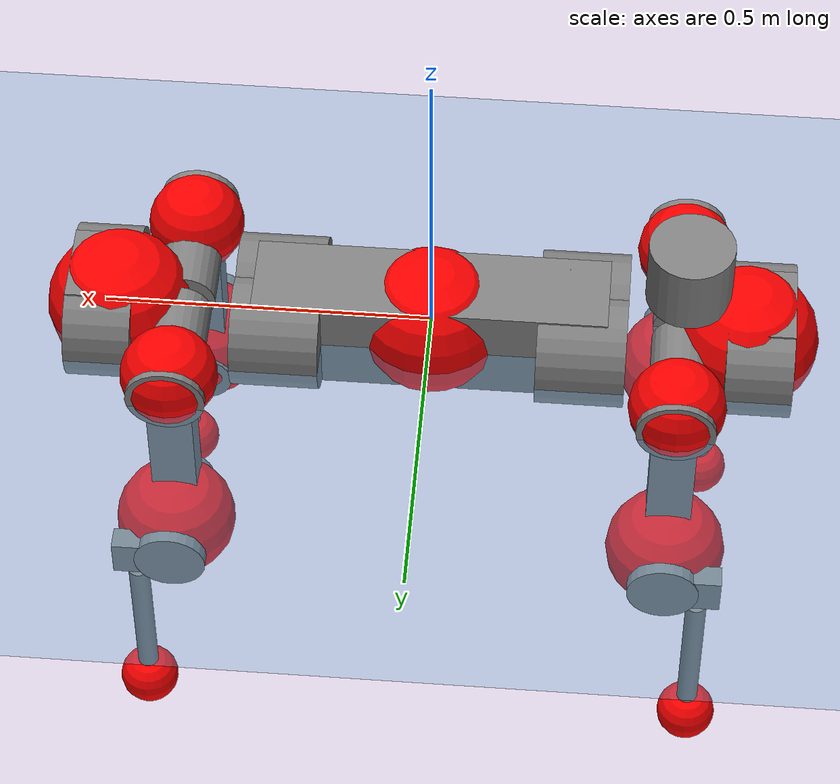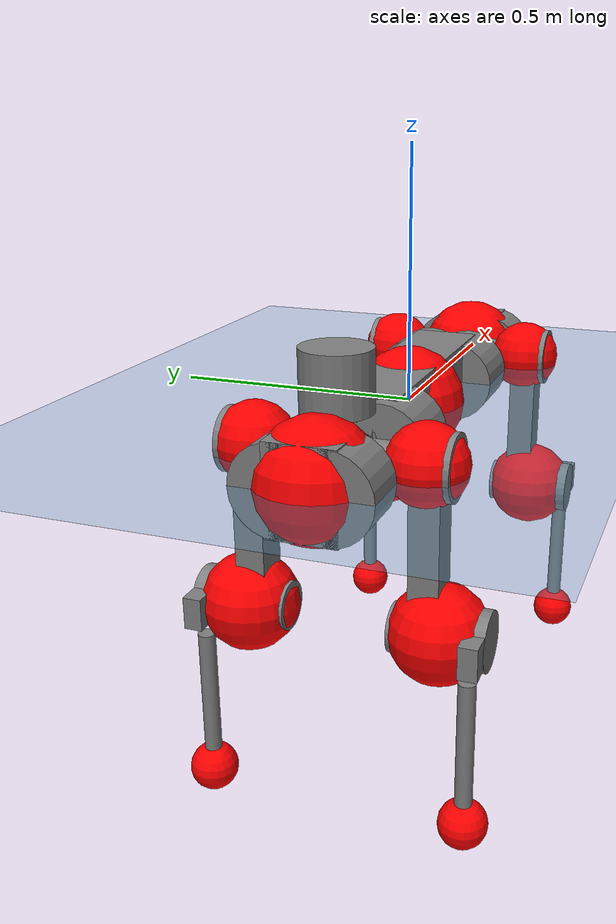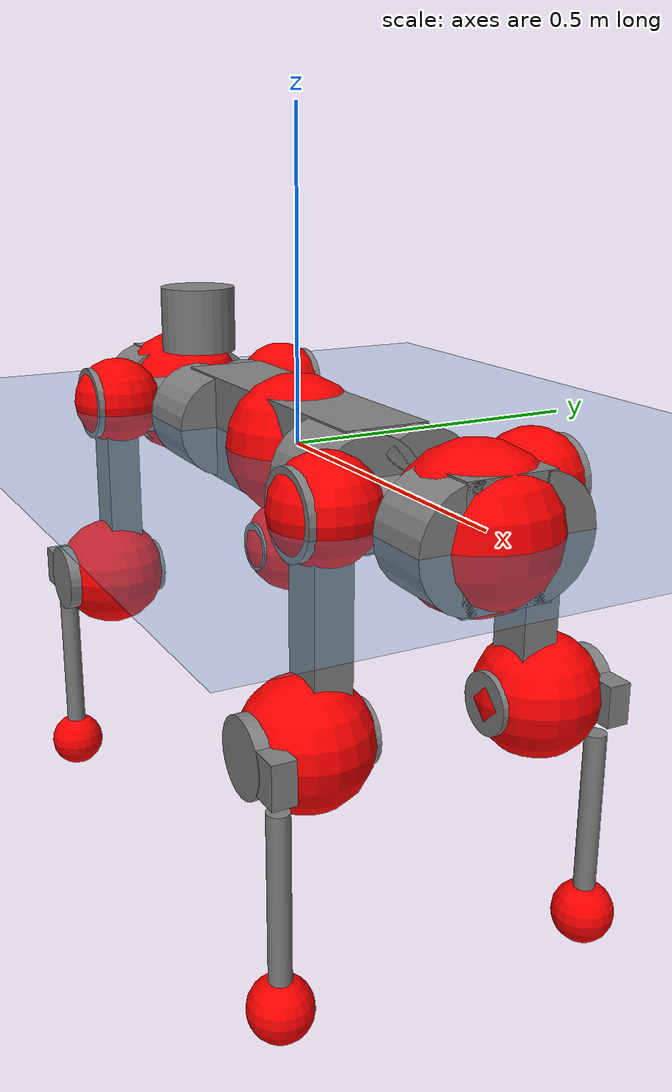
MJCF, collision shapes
<mujoco model="anymal_c">
  <compiler angle="radian" assetdir="assets" balanceinertia="true" inertiafromgeom="false"/>

  <option timestep="0.005" density="1.2" viscosity="2e-05"/>

  <size nkey="1"/>

  <visual>
    <quality shadowsize="8192"/>
    <map shadowclip="0.5"/>
  </visual>

  <default>
    <default class="/">
      <material specular="0" shininess="0.25"/>
      <geom contype="0" conaffinity="0" group="1" solref="-1000 -80"/>
      <site size="0.01 0.005 0.005" group="5"/>
      <general forcelimited="true" forcerange="-80 80" biastype="affine" gainprm="80" biasprm="0 -80 -2"/>
      <default class="anymal_c">
        <joint armature="0.01" damping="0.01" frictionloss="0.1"/>
        <default class="visual">
          <geom type="mesh" group="2"/>
          <default class="visual_zflip"/>
        </default>
        <default class="collision">
          <geom type="cylinder" group="3"/>
          <default class="foot">
            <geom size="0.03 0 0" type="sphere" condim="6" priority="1" friction="0.8 0.02 0.01" solimp="0.015 1 0.03"/>
          </default>
        </default>
      </default>
      <default class="reward_collision_sphere">
        <geom group="5" rgba="1 0 0 1"/>
      </default>
    </default>
  </default>

  <asset>
    <texture type="skybox" colorspace="auto" name="//unnamed_texture_0" builtin="gradient" rgb1="0.95 0.95 0.95" rgb2="0.95 0.95 0.95" width="100" height="600"/>
    <texture type="2d" colorspace="auto" name="texplane" builtin="checker" rgb1="0.345 0.575 0.748" rgb2="0.345 0.575 0.748" markrgb="1 1 1" width="512" height="512"/>
    <texture type="2d" colorspace="linear" name="base" file="base.png"/>
    <texture type="2d" colorspace="linear" name="top_shell" file="top_shell.png"/>
    <texture type="2d" colorspace="linear" name="bottom_shell" file="bottom_shell.png"/>
    <texture type="2d" colorspace="linear" name="remote" file="remote.png"/>
    <texture type="2d" colorspace="linear" name="hatch" file="hatch.png"/>
    <texture type="2d" colorspace="linear" name="handle" file="handle.png"/>
    <texture type="2d" colorspace="linear" name="face" file="face.png"/>
    <texture type="2d" colorspace="linear" name="battery" file="battery.png"/>
    <texture type="2d" colorspace="linear" name="lidar_cage" file="lidar_cage.png"/>
    <texture type="2d" colorspace="linear" name="depth_camera" file="depth_camera.png"/>
    <texture type="2d" colorspace="linear" name="wide_angle_camera" file="wide_angle_camera.png"/>
    <texture type="2d" colorspace="linear" name="lidar" file="lidar.png"/>
    <texture type="2d" colorspace="linear" name="drive" file="drive.png"/>
    <texture type="2d" colorspace="linear" name="hip_l" file="hip_l.png"/>
    <texture type="2d" colorspace="linear" name="shank_l" file="shank_l.png"/>
    <texture type="2d" colorspace="linear" name="foot" file="foot.png"/>
    <texture type="2d" colorspace="linear" name="thigh" file="thigh.png"/>
    <texture type="2d" colorspace="linear" name="shank_r" file="shank_r.png"/>
    <texture type="2d" colorspace="linear" name="hip_r" file="hip_r.png"/>
    <material name="MatPlane" class="/" texture="texplane" texuniform="true" texrepeat="2 2" specular="0.9" shininess="0.5"/>
    <material name="black_plastic" class="/" rgba="0.007 0.007 0.007 1"/>
    <material name="green" class="/" rgba="0.052 0.178 0.033 1"/>
    <material name="red" class="/" rgba="0.178 0.006 0.005 1"/>
    <material name="yellow" class="/" rgba="0.178 0.119 0.006 1"/>
    <material name="lwl" class="/" rgba="0.8 0.8 0.8 1"/>
    <material name="base" class="/" texture="base"/>
    <material name="top_shell" class="/" texture="top_shell"/>
    <material name="bottom_shell" class="/" texture="bottom_shell"/>
    <material name="hip_l" class="/" texture="hip_l"/>
    <material name="thigh" class="/" texture="thigh"/>
    <material name="shank_l" class="/" texture="shank_l"/>
    <material name="foot" class="/" texture="foot"/>
    <material name="hip_r" class="/" texture="hip_r"/>
    <material name="shank" class="/" texture="shank_r"/>
    <material name="hatch" class="/" texture="hatch"/>
    <material name="remote" class="/" texture="remote"/>
    <material name="handle" class="/" texture="handle"/>
    <material name="face" class="/" texture="face"/>
    <material name="depth_camera" class="/" texture="depth_camera"/>
    <material name="wide_angle_camera" class="/" texture="wide_angle_camera"/>
    <material name="battery" class="/" texture="battery"/>
    <material name="lidar_cage" class="/" texture="lidar_cage"/>
    <material name="lidar" class="/" texture="lidar"/>
    <material name="drive" class="/" texture="drive"/>
    <mesh name="base_0" class="/" file="base_0.obj"/>
    <mesh name="base_1" class="/" file="base_1.obj"/>
    <mesh name="base_2" class="/" file="base_2.obj"/>
    <mesh name="base_3" class="/" file="base_3.obj"/>
    <mesh name="base_4" class="/" file="base_4.obj"/>
    <mesh name="base_5" class="/" file="base_5.obj"/>
    <mesh name="top_shell" class="/" file="top_shell.obj"/>
    <mesh name="bottom_shell" class="/" file="bottom_shell.obj"/>
    <mesh name="remote" class="/" file="remote.obj"/>
    <mesh name="handle" class="/" file="handle.obj"/>
    <mesh name="face" class="/" file="face.obj"/>
    <mesh name="wide_angle_camera" class="/" file="wide_angle_camera.obj"/>
    <mesh name="depth_camera" class="/" file="depth_camera.obj"/>
    <mesh name="battery" class="/" file="battery.obj"/>
    <mesh name="lidar_cage" class="/" file="lidar_cage.obj"/>
    <mesh name="lidar" class="/" file="lidar.obj"/>
    <mesh name="drive" class="/" file="drive.obj"/>
    <mesh name="hip_l" class="/" file="hip_l.obj"/>
    <mesh name="thigh" class="/" file="thigh.obj"/>
    <mesh name="shank_l" class="/" file="shank_l.obj"/>
    <mesh name="foot" class="/" file="foot.obj"/>
    <mesh name="hip_r" class="/" file="hip_r.obj"/>
    <mesh name="hatch" class="/" file="hatch.obj"/>
    <mesh name="shank_r" class="/" file="shank_r.obj"/>
  </asset>

  <worldbody>
    <geom name="floor" class="/" size="100 100 0.125" type="plane" group="0" material="MatPlane"/>
    <light name="toplight_shadow" class="/" pos="0 0 5" dir="0.0990148 0.0990148 -0.990148" type="directional" ambient="0.04 0.04 0.04" diffuse="0.55 0.55 0.55" specular="0.12 0.12 0.12"/>
    <light name="toplight_fill" class="/" pos="0 0 5" dir="0.0990148 0.0990148 -0.990148" type="directional" castshadow="false" ambient="0.04 0.04 0.04" diffuse="0.3 0.3 0.3" specular="0.08 0.08 0.08"/>
    <body name="trunk" childclass="anymal_c" pos="-0.000695528 -0.000434746 -0.00246914" quat="1 3.29312e-05 -0.000153921 0.000123851">
      <inertial pos="0.000509699 -0.00128859 0.0562188" quat="0.493187 0.500247 0.499317 0.507151" mass="15.7063" diaginertia="0.914244 0.0593266 0.350719"/>
      <joint name="//unnamed_joint_0" type="free" armature="0" damping="0" frictionloss="0"/>
      <geom name="//unnamed_geom_1" class="visual" material="green" mesh="base_0"/>
      <geom name="//unnamed_geom_2" class="visual" material="yellow" mesh="base_1"/>
      <geom name="//unnamed_geom_3" class="visual" material="red" mesh="base_2"/>
      <geom name="//unnamed_geom_4" class="visual" material="black_plastic" mesh="base_3"/>
      <geom name="//unnamed_geom_5" class="visual" material="lwl" mesh="base_4"/>
      <geom name="//unnamed_geom_6" class="visual" material="base" mesh="base_5"/>
      <geom name="trunk_1" class="collision" size="0.268976 0.0649252 0.0834753" type="box"/>
      <geom name="trunk_2" class="collision" size="0.0834753 0.067244" pos="0.231284 0.0435253 0" quat="0.707107 0 0.707107 0"/>
      <geom name="trunk_3" class="collision" size="0.0834753 0.067244" pos="-0.231284 0.0435253 0" quat="0.707107 0 0.707107 0"/>
      <geom name="trunk_4" class="collision" size="0.0834753 0.067244" pos="0.231284 -0.0435253 0" quat="0.707107 0 0.707107 0"/>
      <geom name="trunk_5" class="collision" size="0.0834753 0.067244" pos="-0.231284 -0.0435253 0" quat="0.707107 0 0.707107 0"/>
      <geom name="//unnamed_geom_12" class="visual" material="top_shell" mesh="top_shell"/>
      <geom name="//unnamed_geom_13" class="visual" material="bottom_shell" mesh="bottom_shell"/>
      <geom name="//unnamed_geom_14" class="visual" material="remote" mesh="remote"/>
      <geom name="//unnamed_geom_15" class="visual" material="handle" mesh="handle"/>
      <geom name="//unnamed_geom_16" class="visual" pos="0.440768 0 0" quat="1 0 0 0" material="face" mesh="face"/>
      <geom name="trunk_6" class="collision" size="0.0510127 0.0649252 0.0834753" pos="0.499253 0 0" type="box"/>
      <geom name="//unnamed_geom_18" class="collision" size="0.0834753 0.0510127" pos="0.499253 0.0435253 0" quat="0.707107 0 0.707107 0"/>
      <geom name="//unnamed_geom_19" class="collision" size="0.0834753 0.0510127" pos="0.499253 -0.0435253 0" quat="0.707107 0 0.707107 0"/>
      <geom name="//unnamed_geom_20" class="visual" pos="0.490907 0 -0.0323007" quat="0.965926 0 0.258819 0" material="depth_camera" mesh="depth_camera"/>
      <geom name="//unnamed_geom_21" class="visual" pos="0.54551 0 0.0164273" material="wide_angle_camera" mesh="wide_angle_camera"/>
      <geom name="//unnamed_geom_22" class="visual_zflip" pos="-0.440768 0 0" quat="0 0 0 1" material="face" mesh="face"/>
      <geom name="trunk_7" class="collision" size="0.0510127 0.0649252 0.0834753" pos="-0.499253 0 0" quat="0 0 0 1" type="box"/>
      <geom name="//unnamed_geom_24" class="collision" size="0.0834753 0.0510127" pos="-0.499253 -0.0435253 0" quat="0 -0.707107 0 0.707107"/>
      <geom name="//unnamed_geom_25" class="collision" size="0.0834753 0.0510127" pos="-0.499253 0.0435253 0" quat="0 -0.707107 0 0.707107"/>
      <geom name="//unnamed_geom_26" class="visual" pos="-0.490907 0 -0.0323007" quat="0 -0.258819 0 0.965926" material="depth_camera" mesh="depth_camera"/>
      <geom name="//unnamed_geom_27" class="visual_zflip" pos="-0.54551 0 0.0164273" quat="0 0 0 1" material="wide_angle_camera" mesh="wide_angle_camera"/>
      <geom name="//unnamed_geom_28" class="visual" material="battery" mesh="battery"/>
      <geom name="//unnamed_geom_29" class="visual" pos="0 0.0417491 0.0316197" quat="0.683013 -0.183013 0.183013 0.683013" material="depth_camera" mesh="depth_camera"/>
      <geom name="//unnamed_geom_30" class="visual" pos="0 -0.0417491 0.0316197" quat="0.683013 0.183013 0.183013 -0.683013" material="depth_camera" mesh="depth_camera"/>
      <geom name="//unnamed_geom_31" class="visual" pos="-0.387068 0 0.0806549" quat="1 0 0 0" material="lidar_cage" mesh="lidar_cage"/>
      <geom name="trunk_8" class="collision" size="0.0649252 0.0556502" pos="-0.387068 0 0.146496"/>
      <geom name="//unnamed_geom_33" class="visual" pos="-0.387068 -0.000173486 0.156043" quat="0.707107 0 0 -0.707107" material="lidar" mesh="lidar"/>
      <geom name="//unnamed_geom_34" class="visual" pos="0.318905 0.0648352 -8.20337e-09" quat="0.258819 0.965926 0 0" material="drive" mesh="drive"/>
      <geom name="//unnamed_geom_35" class="visual" pos="0.318905 -0.0648352 8.20337e-09" quat="0.258819 -0.965926 0 0" material="drive" mesh="drive"/>
      <geom name="//unnamed_geom_36" class="visual" pos="-0.318905 0.0648352 8.20337e-09" quat="0 0 0.965926 -0.258819" material="drive" mesh="drive"/>
      <geom name="//unnamed_geom_37" class="visual" pos="-0.318905 -0.0648352 -8.20337e-09" quat="0 0 -0.965926 -0.258819" material="drive" mesh="drive"/>
      <geom name="//unnamed_geom_38" class="visual" pos="0.123351 0 0.0801062" quat="1 0 0 0" material="hatch" mesh="hatch"/>
      <geom name="//unnamed_geom_39" class="reward_collision_sphere" size="0.1113"/>
      <geom name="//unnamed_geom_40" class="reward_collision_sphere" size="0.1113" pos="0.478518 0 0"/>
      <geom name="//unnamed_geom_41" class="reward_collision_sphere" size="0.1113" pos="-0.478518 0 0"/>
      <site name="imu" pos="0.265321 0.00513793 0.0570487" size="0.00927503"/>
      <camera name="track" pos="0 -1.24358 0" quat="0.707107 0.707107 0 0" mode="trackcom"/>
      <camera name="ego_camera" pos="0.478518 0 -0.0438938" quat="-0.5 -0.5 0.5 0.5"/>
      <body name="LF_HIP" pos="0.31976 0.063692 -9.48809e-05" quat="0.259784 0.965666 -0.000911757 0.000613302">
        <inertial pos="0.0613821 -0.0120258 -0.00788287" quat="-0.122927 0.719094 -0.132422 0.671013" mass="2.22179" diaginertia="0.0079984 0.000464991 0.00544826"/>
        <joint name="LF_HAA" pos="0 0 0" axis="0.999918 0.0106663 -0.00712063" range="-0.701481 0.54369" armature="0.0095072" damping="0.00947548" frictionloss="0.0895691"/>
        <geom name="//unnamed_geom_42" class="visual" pos="0 -0.000482567 7.92613e-05" quat="0.258819 -0.965926 0 0" material="hip_l" mesh="hip_l"/>
        <geom name="//unnamed_geom_43" class="visual" pos="0.063696 -0.0715361 -0.0448189" quat="0.183013 -0.683013 0.683013 0.183013" material="drive" mesh="drive"/>
        <geom name="//unnamed_geom_44" class="collision" size="0.0463751 0.0649252" pos="0.063696 -0.00743649 -0.00757717" quat="-0.353553 -0.612372 0.612372 -0.353553"/>
        <body name="LF_THIGH" pos="0.0645946 -0.0464075 -0.0455768" quat="0.183216 -0.682588 0.683455 0.182744">
          <inertial pos="0.0358588 -0.000373767 -0.268642" quat="0.992455 -0.0116634 -0.0861955 0.0864099" mass="2.50317" diaginertia="0.0401763 0.0027401 0.00653248"/>
          <joint name="LF_HFE" pos="0 0 0" axis="0.999998 0.000408357 -0.00169285" stiffness="0.00718412" range="-3.18059 3.15314" armature="0.00944418" damping="0" frictionloss="0.086963"/>
          <geom name="//unnamed_geom_45" class="visual" pos="0.00878574 1.38443e-05 0" quat="0.707107 0 0 -0.707107" material="thigh" mesh="thigh"/>
          <geom name="//unnamed_geom_46" class="collision" size="0.0602877 0.0371001" pos="0.0425349 0 0" quat="0.5 0.5 -0.5 -0.5"/>
          <geom name="//unnamed_geom_47" class="collision" size="0.0347814 0.0278251 0.131069" pos="0.0319012 0 -0.15507" quat="0.707107 0 0 -0.707107" type="box"/>
          <geom name="//unnamed_geom_48" class="visual" pos="0.106656 0 -0.312743" quat="1 0 0 0" material="drive" mesh="drive"/>
          <geom name="//unnamed_geom_49" class="collision" size="0.0463751 0.0649252" pos="0.0322202 0 -0.312743" quat="0.707107 0 0.707107 0"/>
          <geom name="//unnamed_geom_50" class="reward_collision_sphere" size="0.0742002" pos="0.0265843 0 0"/>
          <body name="LF_SHANK" pos="0.108916 -0.00203379 -0.31284" quat="1 9.92107e-05 -0.000179955 -0.000932148">
            <inertial pos="0.00463749 -0.0380595 -0.089938" quat="0.992281 -0.120249 0.00361916 -0.0300883" mass="0.458641" diaginertia="0.0133356 0.000857319 0.00169425"/>
            <joint name="LF_KFE" pos="0 0 0" axis="0.999948 -0.00529814 -0.00870338" range="-3.1918 3.18742" armature="0.0105738" damping="0.000127484" frictionloss="0.105158"/>
            <geom name="//unnamed_geom_51" class="visual" pos="0.00286484 0.0152755 0" quat="0.707107 0 0 -0.707107" material="shank_l" mesh="shank_l"/>
            <geom name="LF_kfe_act" class="collision" size="0.0556502 0.0185501" pos="0.0212674 0 0" quat="0.5 0.5 -0.5 -0.5"/>
            <geom name="//unnamed_geom_53" class="collision" size="0.0533305 0.0313032 0.0176226" pos="0.0212674 -0.0357523 0" quat="0.5 0.5 -0.5 -0.5" type="box"/>
            <geom name="//unnamed_geom_54" class="visual" pos="0.0138763 -0.0497638 -0.37087" quat="0.382683 0 0 -0.92388" material="foot" mesh="foot"/>
            <geom name="LF_calf" class="collision" size="0.0162313 0.131012" pos="0.013877 -0.0546865 -0.185435" quat="0.707107 0 0 -0.707107"/>
            <geom name="LF_foot" class="foot" size="0.0251956" pos="0.013877 -0.0546865 -0.34618" quat="0.707107 0 0 -0.707107"/>
            <geom name="//unnamed_geom_57" class="reward_collision_sphere" size="0.0927503" pos="-0.0531686 0 0"/>
            <geom name="//unnamed_geom_58" class="reward_collision_sphere" size="0.0463751" pos="0.013877 -0.0546865 -0.34618"/>
            <site name="LF_foot" class="foot" pos="0.013877 -0.0546865 -0.34618" quat="0.707107 0 0 -0.707107" size="0.00927503"/>
          </body>
        </body>
      </body>
      <body name="RF_HIP" pos="0.316796 -0.0636003 -0.00140021" quat="0.259383 -0.965774 -0.000543729 0.000753437">
        <inertial pos="0.0616963 0.010723 -0.0100663" quat="0.134995 0.678618 0.130069 0.710166" mass="2.24965" diaginertia="0.00795539 0.000489237 0.0054113"/>
        <joint name="RF_HAA" pos="0 0 0" axis="0.999899 -0.00639911 -0.0126761" range="-0.510701 0.728518" armature="0.00872672" damping="0.0114022" frictionloss="0.0873017"/>
        <geom name="//unnamed_geom_59" class="visual" pos="0 0.000482564 7.92611e-05" quat="0.258819 0.965926 0 0" material="hip_r" mesh="hip_r"/>
        <geom name="//unnamed_geom_60" class="visual" pos="0.063696 0.0715361 -0.0448189" quat="0.183013 0.683013 0.683013 -0.183013" material="drive" mesh="drive"/>
        <geom name="//unnamed_geom_61" class="collision" size="0.0463751 0.0649252" pos="0.063696 0.00743649 -0.00757717" quat="-0.353553 0.612372 0.612372 0.353553"/>
        <body name="RF_THIGH" pos="0.0614154 0.0455924 -0.0488497" quat="0.182132 0.682926 0.683358 -0.182924">
          <inertial pos="0.0325149 0.000210303 -0.268751" quat="0.993265 -0.00104379 -0.0810442 0.082792" mass="2.36853" diaginertia="0.0397238 0.0027952 0.00670623"/>
          <joint name="RF_HFE" pos="0 0 0" axis="0.999987 -0.000761523 -0.00495411" stiffness="0.00870439" range="-3.14305 3.19266" armature="0.00948274" damping="0" frictionloss="0.088651"/>
          <geom name="//unnamed_geom_62" class="visual" pos="0.00878574 1.38443e-05 0" quat="0.707107 0 0 -0.707107" material="thigh" mesh="thigh"/>
          <geom name="//unnamed_geom_63" class="collision" size="0.0602877 0.0371001" pos="0.0425349 0 0" quat="0.5 0.5 0.5 0.5"/>
          <geom name="//unnamed_geom_64" class="collision" size="0.0347814 0.0278251 0.131069" pos="0.0319012 0 -0.15507" quat="0.707107 0 0 0.707107" type="box"/>
          <geom name="//unnamed_geom_65" class="visual" pos="0.106656 0 -0.312743" quat="1 0 0 0" material="drive" mesh="drive"/>
          <geom name="//unnamed_geom_66" class="collision" size="0.0463751 0.0649252" pos="0.0322202 0 -0.312743" quat="0.707107 0 0.707107 0"/>
          <geom name="//unnamed_geom_67" class="reward_collision_sphere" size="0.0742002" pos="0.0265843 0 0"/>
          <body name="RF_SHANK" pos="0.107155 -0.000442371 -0.309786" quat="1 -0.000132082 0.000498233 -0.000220097">
            <inertial pos="0.00603311 0.0391256 -0.0876388" quat="0.991804 0.126665 -0.00145672 0.0167126" mass="0.467149" diaginertia="0.0137778 0.000836333 0.00175487"/>
            <joint name="RF_KFE" pos="0 0 0" axis="0.999865 -0.00582745 0.0153664" range="-3.19039 3.19004" armature="0.00831637" damping="0.00687916" frictionloss="0.0914816"/>
            <geom name="//unnamed_geom_68" class="visual" pos="0.00286482 -0.0152754 0" quat="0.707107 0 0 0.707107" material="shank" mesh="shank_r"/>
            <geom name="RF_kfe_act" class="collision" size="0.0556502 0.0185501" pos="0.0212674 0 0" quat="0.5 0.5 0.5 0.5"/>
            <geom name="//unnamed_geom_70" class="collision" size="0.0533305 0.0313032 0.0176226" pos="0.0212674 0.0357523 0" quat="0.5 0.5 0.5 0.5" type="box"/>
            <geom name="//unnamed_geom_71" class="visual" pos="0.0138777 0.0497638 -0.37087" quat="0.382683 0 0 0.92388" material="foot" mesh="foot"/>
            <geom name="RF_calf" class="collision" size="0.0162313 0.131012" pos="0.013877 0.0546865 -0.185435" quat="0.707107 0 0 0.707107"/>
            <geom name="RF_foot" class="foot" size="0.0289377" pos="0.013877 0.0546865 -0.34618" quat="0.707107 0 0 0.707107"/>
            <geom name="//unnamed_geom_74" class="reward_collision_sphere" size="0.0927503" pos="-0.0531686 0 0"/>
            <geom name="//unnamed_geom_75" class="reward_collision_sphere" size="0.0463751" pos="0.013877 0.0546865 -0.34618"/>
            <site name="RF_foot" class="foot" pos="0.013877 0.0546865 -0.34618" quat="0.707107 0 0 0.707107" size="0.00927503"/>
          </body>
        </body>
      </body>
      <body name="LH_HIP" pos="-0.318812 0.0675787 -0.000888947" quat="0.000873734 0.000274029 0.965899 -0.258918">
        <inertial pos="0.0631258 0.0102942 -0.0102139" quat="0.142114 0.670661 0.134169 0.715553" mass="2.23604" diaginertia="0.0075866 0.000449499 0.00505383"/>
        <joint name="LH_HAA" pos="0 0 0" axis="0.999906 0.0135267 -0.00206085" range="-0.446424 0.739483" armature="0.00870633" damping="0" frictionloss="0.0974501"/>
        <geom name="//unnamed_geom_76" class="visual" pos="0 0.000482564 7.92611e-05" quat="-0.258819 -0.965926 0 0" material="hip_r" mesh="hip_r"/>
        <geom name="//unnamed_geom_77" class="visual" pos="0.063696 0.0715361 -0.0448189" quat="0.183013 0.683013 0.683013 -0.183013" material="drive" mesh="drive"/>
        <geom name="//unnamed_geom_78" class="collision" size="0.0463751 0.0649252" pos="0.063696 0.00743649 -0.00757717" quat="-0.353553 0.612372 0.612372 0.353553"/>
        <body name="LH_THIGH" pos="0.0605976 0.0457713 -0.048042" quat="0.182947 0.683074 0.682941 -0.183119">
          <inertial pos="0.0328272 0.00177679 -0.269626" quat="0.993166 -0.00377868 -0.0770694 0.0875654" mass="2.4628" diaginertia="0.041255 0.00268768 0.0068349"/>
          <joint name="LH_HFE" pos="0 0 0" axis="0.999975 0.00700092 0.00128362" stiffness="0.00954725" range="-3.13711 3.14841" armature="0.007957" damping="0" frictionloss="0.103697"/>
          <geom name="//unnamed_geom_79" class="visual" pos="0.00878574 1.38443e-05 0" quat="0.707107 0 0 -0.707107" material="thigh" mesh="thigh"/>
          <geom name="//unnamed_geom_80" class="collision" size="0.0602877 0.0371001" pos="0.0425349 0 0" quat="0.5 0.5 -0.5 -0.5"/>
          <geom name="//unnamed_geom_81" class="collision" size="0.0347814 0.0278251 0.131069" pos="0.0319012 0 -0.15507" quat="0.707107 0 0 -0.707107" type="box"/>
          <geom name="//unnamed_geom_82" class="visual" pos="0.106656 0 -0.312743" quat="1 0 0 0" material="drive" mesh="drive"/>
          <geom name="//unnamed_geom_83" class="collision" size="0.0463751 0.0649252" pos="0.0322202 0 -0.312743" quat="0.707107 0 0.707107 0"/>
          <geom name="//unnamed_geom_84" class="reward_collision_sphere" size="0.0742002" pos="0.0265843 0 0"/>
          <body name="LH_SHANK" pos="0.103871 -0.000961654 -0.315832" quat="0.999999 -0.000179367 -0.00139499 -0.000464762">
            <inertial pos="0.0057877 0.0383165 -0.0882061" quat="0.992723 0.116825 -0.00143596 0.0291835" mass="0.470243" diaginertia="0.0136959 0.000858438 0.00179085"/>
            <joint name="LH_KFE" pos="0 0 0" axis="0.999883 0.00796404 -0.0130746" range="-3.14573 3.13737" armature="0.00839338" damping="0.0134322" frictionloss="0.104897"/>
            <geom name="//unnamed_geom_85" class="visual" pos="0.00286482 -0.0152754 0" quat="-0.707107 0 0 -0.707107" material="shank" mesh="shank_r"/>
            <geom name="LH_kfe_act" class="collision" size="0.0556502 0.0185501" pos="0.0212674 0 0" quat="0.5 0.5 -0.5 -0.5"/>
            <geom name="//unnamed_geom_87" class="collision" size="0.0533305 0.0313032 0.0176226" pos="0.0212674 0.0357523 0" quat="0.5 0.5 -0.5 -0.5" type="box"/>
            <geom name="//unnamed_geom_88" class="visual" pos="0.0138777 0.0497638 -0.37087" quat="-0.382683 0 0 -0.92388" material="foot" mesh="foot"/>
            <geom name="LH_calf" class="collision" size="0.0162313 0.131012" pos="0.013877 0.0546865 -0.185435" quat="0.707107 0 0 -0.707107"/>
            <geom name="LH_foot" class="foot" size="0.0274993" pos="0.013877 0.0546865 -0.34618" quat="0.707107 0 0 -0.707107"/>
            <geom name="//unnamed_geom_91" class="reward_collision_sphere" size="0.0927503" pos="-0.0531686 0 0"/>
            <geom name="//unnamed_geom_92" class="reward_collision_sphere" size="0.0463751" pos="0.013877 0.0546865 -0.34618"/>
            <site name="LH_foot" class="foot" pos="0.013877 0.0546865 -0.34618" quat="0.707107 0 0 -0.707107" size="0.00927503"/>
          </body>
        </body>
      </body>
      <body name="RH_HIP" pos="-0.319663 -0.0662 -0.00188635" quat="-0.000409485 0.000509523 -0.966068 -0.258287">
        <inertial pos="0.0594676 -0.00913608 -0.00780791" quat="-0.132543 0.704413 -0.138409 0.683431" mass="2.13573" diaginertia="0.0076981 0.000442467 0.00503676"/>
        <joint name="RH_HAA" pos="0 0 0" axis="1 -0.000474229 -0.000281782" range="-0.754849 0.49228" armature="0.00908355" damping="0" frictionloss="0.0947805"/>
        <geom name="//unnamed_geom_93" class="visual" pos="0 -0.000482567 7.92613e-05" quat="-0.258819 0.965926 0 0" material="hip_l" mesh="hip_l"/>
        <geom name="//unnamed_geom_94" class="visual" pos="0.063696 -0.0715361 -0.0448189" quat="-0.183013 0.683013 -0.683013 -0.183013" material="drive" mesh="drive"/>
        <geom name="//unnamed_geom_95" class="collision" size="0.0463751 0.0649252" pos="0.063696 -0.00743649 -0.00757717" quat="0.353553 0.612372 -0.612372 0.353553"/>
        <body name="RH_THIGH" pos="0.0627469 -0.048244 -0.046114" quat="-0.183676 0.68307 -0.682808 -0.182896">
          <inertial pos="0.0354814 -0.00146934 -0.269026" quat="0.993229 -0.00438458 -0.08056 0.0835851" mass="2.46246" diaginertia="0.0406295 0.00276406 0.0067989"/>
          <joint name="RH_HFE" pos="0 0 0" axis="0.999987 0.00225316 0.00452941" range="-3.15811 3.15477" armature="0.00804766" damping="0" frictionloss="0.0942084"/>
          <geom name="//unnamed_geom_96" class="visual" pos="0.00878574 1.38443e-05 0" quat="0.707107 0 0 -0.707107" material="thigh" mesh="thigh"/>
          <geom name="//unnamed_geom_97" class="collision" size="0.0602877 0.0371001" pos="0.0425349 0 0" quat="0.5 0.5 0.5 0.5"/>
          <geom name="//unnamed_geom_98" class="collision" size="0.0347814 0.0278251 0.131069" pos="0.0319012 0 -0.15507" quat="0.707107 0 0 0.707107" type="box"/>
          <geom name="//unnamed_geom_99" class="visual" pos="0.106656 0 -0.312743" quat="1 0 0 0" material="drive" mesh="drive"/>
          <geom name="//unnamed_geom_100" class="collision" size="0.0463751 0.0649252" pos="0.0322202 0 -0.312743" quat="0.707107 0 0.707107 0"/>
          <geom name="//unnamed_geom_101" class="reward_collision_sphere" size="0.0742002" pos="0.0265843 0 0"/>
          <body name="RH_SHANK" pos="0.106024 -0.000543758 -0.31018" quat="0.999999 -0.000210468 0.000965459 0.00101831">
            <inertial pos="0.00348 -0.0378656 -0.089473" quat="0.993259 -0.111374 -0.00222187 -0.0320573" mass="0.46285" diaginertia="0.013198 0.000868304 0.00174069"/>
            <joint name="RH_KFE" pos="0 0 0" axis="0.999988 0.00297325 0.00390422" stiffness="0.00673808" range="-3.12845 3.09273" armature="0.00918641" damping="0.0165515" frictionloss="0.0932643"/>
            <geom name="//unnamed_geom_102" class="visual" pos="0.00286484 0.0152755 0" quat="0.707107 0 0 -0.707107" material="shank_l" mesh="shank_l"/>
            <geom name="RH_kfe_act" class="collision" size="0.0556502 0.0185501" pos="0.0212674 0 0" quat="0.5 0.5 0.5 0.5"/>
            <geom name="//unnamed_geom_104" class="collision" size="0.0533305 0.0313032 0.0176226" pos="0.0212674 -0.0357523 0" quat="0.5 0.5 0.5 0.5" type="box"/>
            <geom name="//unnamed_geom_105" class="visual" pos="0.0138763 -0.0497638 -0.37087" quat="0.382683 0 0 -0.92388" material="foot" mesh="foot"/>
            <geom name="RH_calf" class="collision" size="0.0162313 0.131012" pos="0.013877 -0.0546865 -0.185435" quat="0.707107 0 0 0.707107"/>
            <geom name="RH_foot" class="foot" size="0.0242616" pos="0.013877 -0.0546865 -0.34618" quat="0.707107 0 0 0.707107"/>
            <geom name="//unnamed_geom_108" class="reward_collision_sphere" size="0.0927503" pos="-0.0531686 0 0"/>
            <geom name="//unnamed_geom_109" class="reward_collision_sphere" size="0.0463751" pos="0.013877 -0.0546865 -0.34618"/>
            <site name="RH_foot" class="foot" pos="0.013877 -0.0546865 -0.34618" quat="0.707107 0 0 0.707107" size="0.00927503"/>
          </body>
        </body>
      </body>
    </body>
  </worldbody>

  <contact>
    <pair class="/" geom1="floor" geom2="LF_foot" name="//unnamed_contact_0"/>
    <pair class="/" geom1="floor" geom2="RF_foot" name="//unnamed_contact_1"/>
    <pair class="/" geom1="floor" geom2="LH_foot" name="//unnamed_contact_2"/>
    <pair class="/" geom1="floor" geom2="RH_foot" name="//unnamed_contact_3"/>
  </contact>

  <actuator>
    <general name="LF_HAA" class="/" joint="LF_HAA" forcerange="-74.8024 74.8024" gainprm="67.6811" biasprm="0 -67.6811 -1.73599"/>
    <general name="LF_HFE" class="/" joint="LF_HFE" forcerange="-66.4685 66.4685" gainprm="67.6811" biasprm="0 -67.6811 -1.73599"/>
    <general name="LF_KFE" class="/" joint="LF_KFE" forcerange="-71.8406 71.8406" gainprm="67.6811" biasprm="0 -67.6811 -1.73599"/>
    <general name="RF_HAA" class="/" joint="RF_HAA" forcerange="-67.5375 67.5375" gainprm="67.6811" biasprm="0 -67.6811 -1.73599"/>
    <general name="RF_HFE" class="/" joint="RF_HFE" forcerange="-84.1607 84.1607" gainprm="67.6811" biasprm="0 -67.6811 -1.73599"/>
    <general name="RF_KFE" class="/" joint="RF_KFE" forcerange="-70.4291 70.4291" gainprm="67.6811" biasprm="0 -67.6811 -1.73599"/>
    <general name="LH_HAA" class="/" joint="LH_HAA" forcerange="-74.1258 74.1258" gainprm="67.6811" biasprm="0 -67.6811 -1.73599"/>
    <general name="LH_HFE" class="/" joint="LH_HFE" forcerange="-70.7214 70.7214" gainprm="67.6811" biasprm="0 -67.6811 -1.73599"/>
    <general name="LH_KFE" class="/" joint="LH_KFE" forcerange="-73.8631 73.8631" gainprm="67.6811" biasprm="0 -67.6811 -1.73599"/>
    <general name="RH_HAA" class="/" joint="RH_HAA" forcerange="-69.2565 69.2565" gainprm="67.6811" biasprm="0 -67.6811 -1.73599"/>
    <general name="RH_HFE" class="/" joint="RH_HFE" forcerange="-73.7376 73.7376" gainprm="67.6811" biasprm="0 -67.6811 -1.73599"/>
    <general name="RH_KFE" class="/" joint="RH_KFE" forcerange="-79.3062 79.3062" gainprm="67.6811" biasprm="0 -67.6811 -1.73599"/>
  </actuator>

  <sensor>
    <gyro site="imu" name="imu_angular_velocity"/>
    <velocimeter site="imu" name="imu_linear_velocity"/>
    <framelinvel objtype="site" objname="LF_foot" name="LF_foot_global_linear_velocity"/>
    <framelinvel objtype="site" objname="RF_foot" name="RF_foot_global_linear_velocity"/>
    <framelinvel objtype="site" objname="LH_foot" name="LH_foot_global_linear_velocity"/>
    <framelinvel objtype="site" objname="RH_foot" name="RH_foot_global_linear_velocity"/>
  </sensor>

  <keyframe>
    <key name="home" qpos="0 0 0.55 1 0 0 0 0 0.4 -0.8 0 -0.4 0.8 0 -0.4 0.8 0 0.4 -0.8"/>
  </keyframe>
</mujoco>
